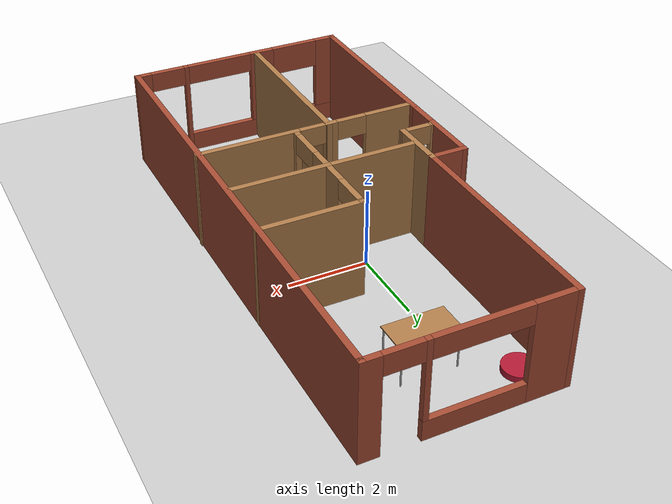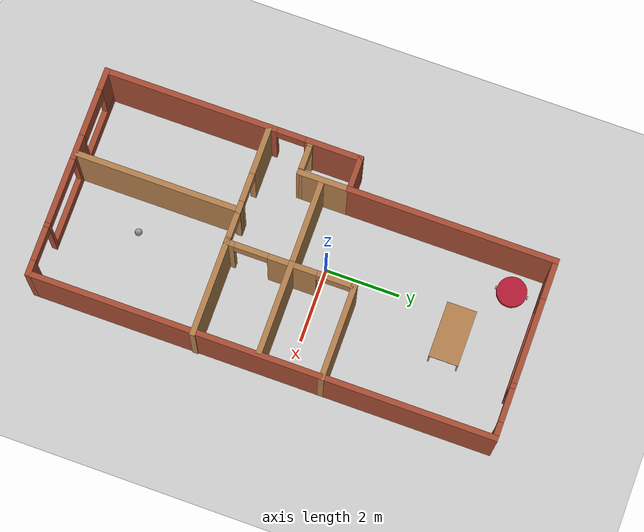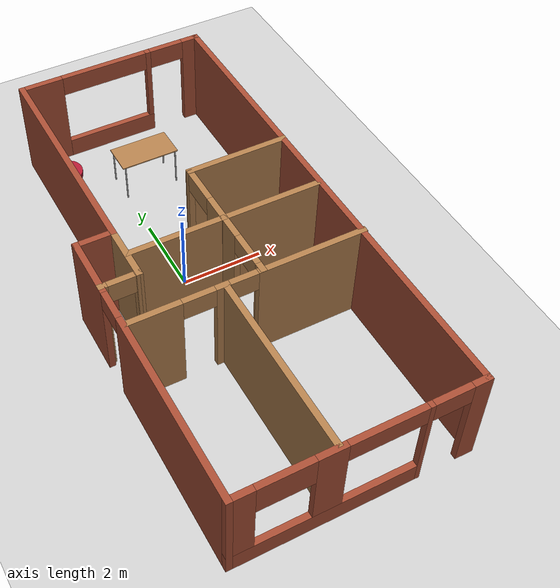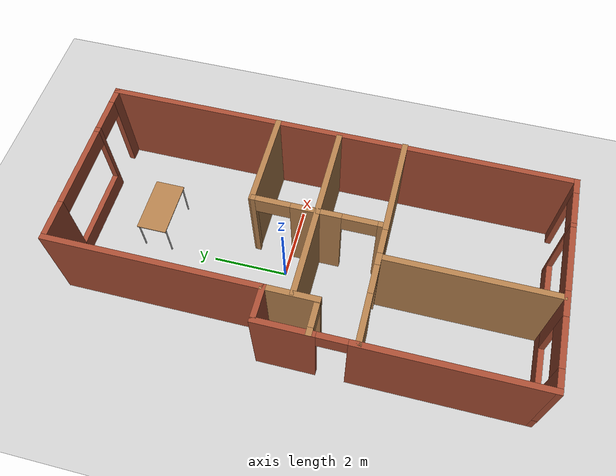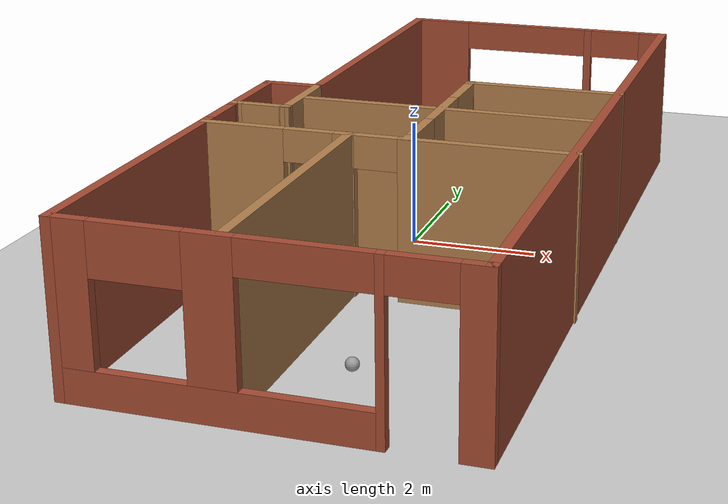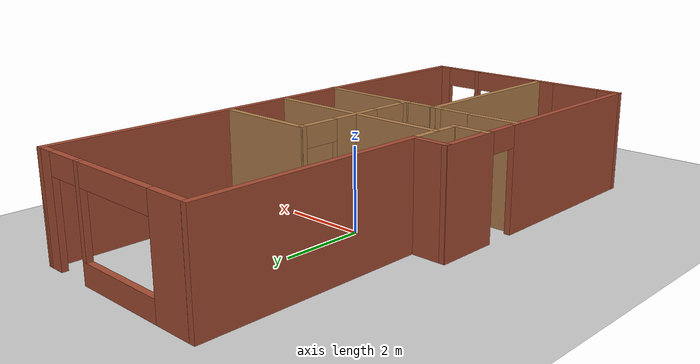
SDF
<sdf version="1.6">
 <world name="default">
  <plugin name="hello" filename="libhome_plugin.so"/>
  <light name="sun" type="directional">
   <pose>0 0 10 0 -0 0</pose>
   <diffuse>0.8 0.8 0.8 1</diffuse>
   <specular>0.2 0.2 0.2 1</specular>
   <attenuation>
    <range>1000</range>
    <constant>0.9</constant>
    <linear>0.01</linear>
    <quadratic>0.001</quadratic>
   </attenuation>
   <direction>-0.5 0.1 -0.9</direction>
  </light>
  <model name="ground_plane">
   <static>1</static>
   <link name="link">
    <collision name="collision">
     <geometry><plane><normal>0 0 1</normal><size>100 100</size></plane></geometry>
     <surface><friction><ode><mu>100</mu><mu2>50</mu2></ode></friction></surface>
    </collision>
    <visual name="visual">
     <cast_shadows>0</cast_shadows>
     <geometry><plane><normal>0 0 1</normal><size>100 100</size></plane></geometry>
     <material>
      <script><uri>file://media/materials/scripts/gazebo.material</uri><name>Gazebo/Grey</name></script>
     </material>
    </visual>
   </link>
  </model>
  <gravity>0 0 -9.8</gravity>
  <magnetic_field>6e-06 2.3e-05 -4.2e-05</magnetic_field>
  <atmosphere type="adiabatic"/>
  <physics name="default_physics" default="0" type="ode">
   <max_step_size>0.001</max_step_size>
   <real_time_factor>1</real_time_factor>
   <real_time_update_rate>1000</real_time_update_rate>
  </physics>
  <scene><ambient>0.4 0.4 0.4 1</ambient><background>0.7 0.7 0.7 1</background><shadows>1</shadows></scene>
  <spherical_coordinates>
   <surface_model>EARTH_WGS84</surface_model>
   <latitude_deg>0</latitude_deg>
   <longitude_deg>0</longitude_deg>
   <elevation>0</elevation>
   <heading_deg>0</heading_deg>
  </spherical_coordinates>
  <model name="apartment">
   <pose>0.314458 -0.67293 0 0 -0 0</pose>
   <link name="Wall_0">
    <pose>0.485298 6.175 0 0 -0 0</pose>
    <visual name="Wall_0_Visual_0">
     <pose>-1.89642 0 1.25 0 -0 0</pose>
     <geometry><box><size>0.957161 0.15 2.5</size></box></geometry>
     <material>
      <script><uri>file://media/materials/scripts/gazebo.material</uri><name>Gazebo/Bricks</name></script>
      <ambient>0.996078 0.47451 0.0196078 1</ambient>
     </material>
     <meta><layer>0</layer></meta>
    </visual>
    <collision name="Wall_0_Collision_0">
     <geometry><box><size>0.957161 0.15 2.5</size></box></geometry>
     <pose>-1.89642 0 1.25 0 -0 0</pose>
    </collision>
    <visual name="Wall_0_Visual_1">
     <pose>2.12746 0 1.25 0 -0 0</pose>
     <geometry><box><size>0.495082 0.15 2.5</size></box></geometry>
     <material>
      <script><uri>file://media/materials/scripts/gazebo.material</uri><name>Gazebo/Bricks</name></script>
      <ambient>0.996078 0.47451 0.0196078 1</ambient>
     </material>
     <meta><layer>0</layer></meta>
    </visual>
    <collision name="Wall_0_Collision_1">
     <geometry><box><size>0.495082 0.15 2.5</size></box></geometry>
     <pose>2.12746 0 1.25 0 -0 0</pose>
    </collision>
    <visual name="Wall_0_Visual_2">
     <pose>-0.21896 0 0.25 0 -0 0</pose>
     <geometry><box><size>2.39776 0.15 0.5</size></box></geometry>
     <material>
      <script><uri>file://media/materials/scripts/gazebo.material</uri><name>Gazebo/Bricks</name></script>
      <ambient>0.996078 0.47451 0.0196078 1</ambient>
     </material>
     <meta><layer>0</layer></meta>
    </visual>
    <collision name="Wall_0_Collision_2">
     <geometry><box><size>2.39776 0.15 0.5</size></box></geometry>
     <pose>-0.21896 0 0.25 0 -0 0</pose>
    </collision>
    <visual name="Wall_0_Visual_3">
     <pose>0.91204 0 1.5 0 -0 0</pose>
     <geometry><box><size>0.135757 0.15 2</size></box></geometry>
     <material>
      <script><uri>file://media/materials/scripts/gazebo.material</uri><name>Gazebo/Bricks</name></script>
      <ambient>0.996078 0.47451 0.0196078 1</ambient>
     </material>
     <meta><layer>0</layer></meta>
    </visual>
    <collision name="Wall_0_Collision_3">
     <geometry><box><size>0.135757 0.15 2</size></box></geometry>
     <pose>0.91204 0 1.5 0 -0 0</pose>
    </collision>
    <visual name="Wall_0_Visual_4">
     <pose>-0.286839 0 2.25 0 -0 0</pose>
     <geometry><box><size>2.262 0.15 0.5</size></box></geometry>
     <material>
      <script><uri>file://media/materials/scripts/gazebo.material</uri><name>Gazebo/Bricks</name></script>
      <ambient>0.996078 0.47451 0.0196078 1</ambient>
     </material>
     <meta><layer>0</layer></meta>
    </visual>
    <collision name="Wall_0_Collision_4">
     <geometry><box><size>2.262 0.15 0.5</size></box></geometry>
     <pose>-0.286839 0 2.25 0 -0 0</pose>
    </collision>
    <visual name="Wall_0_Visual_5">
     <pose>1.42992 0 2.25 0 -0 0</pose>
     <geometry><box><size>0.9 0.15 0.5</size></box></geometry>
     <material>
      <script><uri>file://media/materials/scripts/gazebo.material</uri><name>Gazebo/Bricks</name></script>
      <ambient>0.996078 0.47451 0.0196078 1</ambient>
     </material>
     <meta><layer>0</layer></meta>
    </visual>
    <collision name="Wall_0_Collision_5">
     <geometry><box><size>0.9 0.15 0.5</size></box></geometry>
     <pose>1.42992 0 2.25 0 -0 0</pose>
    </collision>
   </link>
   <link name="Wall_1">
    <collision name="Wall_1_Collision">
     <geometry><box><size>12.5 0.15 2.5</size></box></geometry>
     <pose>0 0 1.25 0 -0 0</pose>
    </collision>
    <visual name="Wall_1_Visual">
     <pose>0 0 1.25 0 -0 0</pose>
     <geometry><box><size>12.5 0.15 2.5</size></box></geometry>
     <material>
      <script><uri>file://media/materials/scripts/gazebo.material</uri><name>Gazebo/Bricks</name></script>
      <ambient>0.996078 0.47451 0.0196078 1</ambient>
     </material>
     <meta><layer>0</layer></meta>
    </visual>
    <pose>2.7853 0 0 0 0 -1.5708</pose>
   </link>
   <link name="Wall_11">
    <pose>-2.3889 -0.646623 0 0 -0 0</pose>
    <visual name="Wall_11_Visual_0">
     <pose>-0.39543 0 1.25 0 -0 0</pose>
     <geometry><box><size>0.20914 0.15 2.5</size></box></geometry>
     <material>
      <script><uri>file://media/materials/scripts/gazebo.material</uri><name>Gazebo/Wood</name></script>
      <ambient>1 1 1 1</ambient>
     </material>
     <meta><layer>0</layer></meta>
    </visual>
    <collision name="Wall_11_Collision_0">
     <geometry><box><size>0.20914 0.15 2.5</size></box></geometry>
     <pose>-0.39543 0 1.25 0 -0 0</pose>
    </collision>
    <visual name="Wall_11_Visual_1">
     <pose>0.416914 0 1.25 0 -0 0</pose>
     <geometry><box><size>0.166172 0.15 2.5</size></box></geometry>
     <material>
      <script><uri>file://media/materials/scripts/gazebo.material</uri><name>Gazebo/Wood</name></script>
      <ambient>1 1 1 1</ambient>
     </material>
     <meta><layer>0</layer></meta>
    </visual>
    <collision name="Wall_11_Collision_1">
     <geometry><box><size>0.166172 0.15 2.5</size></box></geometry>
     <pose>0.416914 0 1.25 0 -0 0</pose>
    </collision>
    <visual name="Wall_11_Visual_2">
     <pose>0.021484 0 2.25 0 -0 0</pose>
     <geometry><box><size>0.624688 0.15 0.5</size></box></geometry>
     <material>
      <script><uri>file://media/materials/scripts/gazebo.material</uri><name>Gazebo/Wood</name></script>
      <ambient>1 1 1 1</ambient>
     </material>
     <meta><layer>0</layer></meta>
    </visual>
    <collision name="Wall_11_Collision_2">
     <geometry><box><size>0.624688 0.15 0.5</size></box></geometry>
     <pose>0.021484 0 2.25 0 -0 0</pose>
    </collision>
   </link>
   <link name="Wall_12">
    <collision name="Wall_12_Collision">
     <geometry><box><size>1.47155 0.15 2.5</size></box></geometry>
     <pose>0 0 1.25 0 -0 0</pose>
    </collision>
    <visual name="Wall_12_Visual">
     <pose>0 0 1.25 0 -0 0</pose>
     <geometry><box><size>1.47155 0.15 2.5</size></box></geometry>
     <material>
      <script><uri>file://media/materials/scripts/gazebo.material</uri><name>Gazebo/Wood</name></script>
      <ambient>1 1 1 1</ambient>
     </material>
     <meta><layer>0</layer></meta>
    </visual>
    <pose>-1.96418 0.014151 0 0 -0 1.57122</pose>
   </link>
   <link name="Wall_14">
    <collision name="Wall_14_Collision">
     <geometry><box><size>2.425 0.15 2.5</size></box></geometry>
     <pose>0 0 1.25 0 -0 0</pose>
    </collision>
    <visual name="Wall_14_Visual">
     <pose>0 0 1.25 0 -0 0</pose>
     <geometry><box><size>2.425 0.15 2.5</size></box></geometry>
     <material>
      <script><uri>file://media/materials/scripts/gazebo.material</uri><name>Gazebo/Wood</name></script>
      <ambient>1 1 1 1</ambient>
     </material>
     <meta><layer>0</layer></meta>
    </visual>
    <pose>-0.796958 -0.049075 0 0 -0 0</pose>
   </link>
   <link name="Wall_17">
    <collision name="Wall_17_Collision">
     <geometry><box><size>2.584 0.15 2.5</size></box></geometry>
     <pose>0 0 1.25 0 -0 0</pose>
    </collision>
    <visual name="Wall_17_Visual">
     <pose>0 0 1.25 0 -0 0</pose>
     <geometry><box><size>2.584 0.15 2.5</size></box></geometry>
     <material>
      <script><uri>file://media/materials/scripts/gazebo.material</uri><name>Gazebo/Wood</name></script>
      <ambient>1 1 1 1</ambient>
     </material>
     <meta><layer>0</layer></meta>
    </visual>
    <pose>1.57254 1.62593 0 0 -0 3.14159</pose>
   </link>
   <link name="Wall_19">
    <pose>0.350205 -0.090732 0 0 -0 1.5708</pose>
    <visual name="Wall_19_Visual_0">
     <pose>-1.61376 0 1.25 0 -0 0</pose>
     <geometry><box><size>0.272483 0.15 2.5</size></box></geometry>
     <material>
      <script><uri>file://media/materials/scripts/gazebo.material</uri><name>Gazebo/Wood</name></script>
      <ambient>1 1 1 1</ambient>
     </material>
     <meta><layer>0</layer></meta>
    </visual>
    <collision name="Wall_19_Collision_0">
     <geometry><box><size>0.272483 0.15 2.5</size></box></geometry>
     <pose>-1.61376 0 1.25 0 -0 0</pose>
    </collision>
    <visual name="Wall_19_Visual_1">
     <pose>0.073731 0 1.25 0 -0 0</pose>
     <geometry><box><size>1.3025 0.15 2.5</size></box></geometry>
     <material>
      <script><uri>file://media/materials/scripts/gazebo.material</uri><name>Gazebo/Wood</name></script>
      <ambient>1 1 1 1</ambient>
     </material>
     <meta><layer>0</layer></meta>
    </visual>
    <collision name="Wall_19_Collision_1">
     <geometry><box><size>1.3025 0.15 2.5</size></box></geometry>
     <pose>0.073731 0 1.25 0 -0 0</pose>
    </collision>
    <visual name="Wall_19_Visual_2">
     <pose>1.68749 0 1.25 0 -0 0</pose>
     <geometry><box><size>0.12502 0.15 2.5</size></box></geometry>
     <material>
      <script><uri>file://media/materials/scripts/gazebo.material</uri><name>Gazebo/Wood</name></script>
      <ambient>1 1 1 1</ambient>
     </material>
     <meta><layer>0</layer></meta>
    </visual>
    <collision name="Wall_19_Collision_2">
     <geometry><box><size>0.12502 0.15 2.5</size></box></geometry>
     <pose>1.68749 0 1.25 0 -0 0</pose>
    </collision>
    <visual name="Wall_19_Visual_3">
     <pose>-1.02752 0 2.25 0 -0 0</pose>
     <geometry><box><size>0.9 0.15 0.5</size></box></geometry>
     <material>
      <script><uri>file://media/materials/scripts/gazebo.material</uri><name>Gazebo/Wood</name></script>
      <ambient>1 1 1 1</ambient>
     </material>
     <meta><layer>0</layer></meta>
    </visual>
    <collision name="Wall_19_Collision_3">
     <geometry><box><size>0.9 0.15 0.5</size></box></geometry>
     <pose>-1.02752 0 2.25 0 -0 0</pose>
    </collision>
    <visual name="Wall_19_Visual_4">
     <pose>1.17498 0 2.25 0 -0 0</pose>
     <geometry><box><size>0.9 0.15 0.5</size></box></geometry>
     <material>
      <script><uri>file://media/materials/scripts/gazebo.material</uri><name>Gazebo/Wood</name></script>
      <ambient>1 1 1 1</ambient>
     </material>
     <meta><layer>0</layer></meta>
    </visual>
    <collision name="Wall_19_Collision_4">
     <geometry><box><size>0.9 0.15 0.5</size></box></geometry>
     <pose>1.17498 0 2.25 0 -0 0</pose>
    </collision>
   </link>
   <link name="Wall_2">
    <pose>-0.014702 -6.175 0 0 -0 3.14159</pose>
    <visual name="Wall_2_Visual_0">
     <pose>-2.65805 0 1.25 0 -0 0</pose>
     <geometry><box><size>0.433901 0.15 2.5</size></box></geometry>
     <material>
      <script><uri>file://media/materials/scripts/gazebo.material</uri><name>Gazebo/Bricks</name></script>
      <ambient>0.996078 0.47451 0.0196078 1</ambient>
     </material>
     <meta><layer>0</layer></meta>
    </visual>
    <collision name="Wall_2_Collision_0">
     <geometry><box><size>0.433901 0.15 2.5</size></box></geometry>
     <pose>-2.65805 0 1.25 0 -0 0</pose>
    </collision>
    <visual name="Wall_2_Visual_1">
     <pose>-1.48313 0 1.25 0 -0 0</pose>
     <geometry><box><size>0.115933 0.15 2.5</size></box></geometry>
     <material>
      <script><uri>file://media/materials/scripts/gazebo.material</uri><name>Gazebo/Bricks</name></script>
      <ambient>0.996078 0.47451 0.0196078 1</ambient>
     </material>
     <meta><layer>0</layer></meta>
    </visual>
    <collision name="Wall_2_Collision_1">
     <geometry><box><size>0.115933 0.15 2.5</size></box></geometry>
     <pose>-1.48313 0 1.25 0 -0 0</pose>
    </collision>
    <visual name="Wall_2_Visual_2">
     <pose>0.724917 0 0.25 0 -0 0</pose>
     <geometry><box><size>4.30017 0.15 0.5</size></box></geometry>
     <material>
      <script><uri>file://media/materials/scripts/gazebo.material</uri><name>Gazebo/Bricks</name></script>
      <ambient>0.996078 0.47451 0.0196078 1</ambient>
     </material>
     <meta><layer>0</layer></meta>
    </visual>
    <collision name="Wall_2_Collision_2">
     <geometry><box><size>4.30017 0.15 0.5</size></box></geometry>
     <pose>0.724917 0 0.25 0 -0 0</pose>
    </collision>
    <visual name="Wall_2_Visual_3">
     <pose>0.668464 0 1.5 0 -0 0</pose>
     <geometry><box><size>0.66726 0.15 2</size></box></geometry>
     <material>
      <script><uri>file://media/materials/scripts/gazebo.material</uri><name>Gazebo/Bricks</name></script>
      <ambient>0.996078 0.47451 0.0196078 1</ambient>
     </material>
     <meta><layer>0</layer></meta>
    </visual>
    <collision name="Wall_2_Collision_3">
     <geometry><box><size>0.66726 0.15 2</size></box></geometry>
     <pose>0.668464 0 1.5 0 -0 0</pose>
    </collision>
    <visual name="Wall_2_Visual_4">
     <pose>2.57155 0 1.5 0 -0 0</pose>
     <geometry><box><size>0.606906 0.15 2</size></box></geometry>
     <material>
      <script><uri>file://media/materials/scripts/gazebo.material</uri><name>Gazebo/Bricks</name></script>
      <ambient>0.996078 0.47451 0.0196078 1</ambient>
     </material>
     <meta><layer>0</layer></meta>
    </visual>
    <collision name="Wall_2_Collision_4">
     <geometry><box><size>0.606906 0.15 2</size></box></geometry>
     <pose>2.57155 0 1.5 0 -0 0</pose>
    </collision>
    <visual name="Wall_2_Visual_5">
     <pose>1.63509 0 2.125 0 -0 0</pose>
     <geometry><box><size>1.266 0.15 0.75</size></box></geometry>
     <material>
      <script><uri>file://media/materials/scripts/gazebo.material</uri><name>Gazebo/Bricks</name></script>
      <ambient>0.996078 0.47451 0.0196078 1</ambient>
     </material>
     <meta><layer>0</layer></meta>
    </visual>
    <collision name="Wall_2_Collision_5">
     <geometry><box><size>1.266 0.15 0.75</size></box></geometry>
     <pose>1.63509 0 2.125 0 -0 0</pose>
    </collision>
    <visual name="Wall_2_Visual_6">
     <pose>-1.9911 0 2.25 0 -0 0</pose>
     <geometry><box><size>0.9 0.15 0.5</size></box></geometry>
     <material>
      <script><uri>file://media/materials/scripts/gazebo.material</uri><name>Gazebo/Bricks</name></script>
      <ambient>0.996078 0.47451 0.0196078 1</ambient>
     </material>
     <meta><layer>0</layer></meta>
    </visual>
    <collision name="Wall_2_Collision_6">
     <geometry><box><size>0.9 0.15 0.5</size></box></geometry>
     <pose>-1.9911 0 2.25 0 -0 0</pose>
    </collision>
    <visual name="Wall_2_Visual_7">
     <pose>-0.545166 0 2.25 0 -0 0</pose>
     <geometry><box><size>1.76 0.15 0.5</size></box></geometry>
     <material>
      <script><uri>file://media/materials/scripts/gazebo.material</uri><name>Gazebo/Bricks</name></script>
      <ambient>0.996078 0.47451 0.0196078 1</ambient>
     </material>
     <meta><layer>0</layer></meta>
    </visual>
    <collision name="Wall_2_Collision_7">
     <geometry><box><size>1.76 0.15 0.5</size></box></geometry>
     <pose>-0.545166 0 2.25 0 -0 0</pose>
    </collision>
   </link>
   <link name="Wall_21">
    <collision name="Wall_21_Collision">
     <geometry><box><size>2.5 0.15 2.5</size></box></geometry>
     <pose>0 0 1.25 0 -0 0</pose>
    </collision>
    <visual name="Wall_21_Visual">
     <pose>0 0 1.25 0 -0 0</pose>
     <geometry><box><size>2.5 0.15 2.5</size></box></geometry>
     <material>
      <script><uri>file://media/materials/scripts/gazebo.material</uri><name>Gazebo/Wood</name></script>
      <ambient>1 1 1 1</ambient>
     </material>
     <meta><layer>0</layer></meta>
    </visual>
    <pose>1.51554 -0.049075 0 0 -0 0</pose>
   </link>
   <link name="Wall_3">
    <pose>-2.8147 -2.75 0 0 -0 1.5708</pose>
    <visual name="Wall_3_Visual_0">
     <pose>-1.15148 0 1.25 0 -0 0</pose>
     <geometry><box><size>4.69705 0.15 2.5</size></box></geometry>
     <material>
      <script><uri>file://media/materials/scripts/gazebo.material</uri><name>Gazebo/Bricks</name></script>
      <ambient>0.996078 0.47451 0.0196078 1</ambient>
     </material>
     <meta><layer>0</layer></meta>
    </visual>
    <collision name="Wall_3_Collision_0">
     <geometry><box><size>4.69705 0.15 2.5</size></box></geometry>
     <pose>-1.15148 0 1.25 0 -0 0</pose>
    </collision>
    <visual name="Wall_3_Visual_1">
     <pose>2.72205 0 1.25 0 -0 0</pose>
     <geometry><box><size>1.55591 0.15 2.5</size></box></geometry>
     <material>
      <script><uri>file://media/materials/scripts/gazebo.material</uri><name>Gazebo/Bricks</name></script>
      <ambient>0.996078 0.47451 0.0196078 1</ambient>
     </material>
     <meta><layer>0</layer></meta>
    </visual>
    <collision name="Wall_3_Collision_1">
     <geometry><box><size>1.55591 0.15 2.5</size></box></geometry>
     <pose>2.72205 0 1.25 0 -0 0</pose>
    </collision>
    <visual name="Wall_3_Visual_2">
     <pose>1.57057 0 2.25 0 -0 0</pose>
     <geometry><box><size>0.747049 0.15 0.5</size></box></geometry>
     <material>
      <script><uri>file://media/materials/scripts/gazebo.material</uri><name>Gazebo/Bricks</name></script>
      <ambient>0.996078 0.47451 0.0196078 1</ambient>
     </material>
     <meta><layer>0</layer></meta>
    </visual>
    <collision name="Wall_3_Collision_2">
     <geometry><box><size>0.747049 0.15 0.5</size></box></geometry>
     <pose>1.57057 0 2.25 0 -0 0</pose>
    </collision>
   </link>
   <link name="Wall_4">
    <collision name="Wall_4_Collision">
     <geometry><box><size>1 0.15 2.5</size></box></geometry>
     <pose>0 0 1.25 0 -0 0</pose>
    </collision>
    <visual name="Wall_4_Visual">
     <pose>0 0 1.25 0 -0 0</pose>
     <geometry><box><size>1 0.15 2.5</size></box></geometry>
     <material>
      <script><uri>file://media/materials/scripts/gazebo.material</uri><name>Gazebo/Bricks</name></script>
      <ambient>0.996078 0.47451 0.0196078 1</ambient>
     </material>
     <meta><layer>0</layer></meta>
    </visual>
    <pose>-2.38958 0.674962 0 0 0 -8.9e-05</pose>
   </link>
   <link name="Wall_5">
    <collision name="Wall_5_Collision">
     <geometry><box><size>5.648 0.15 2.5</size></box></geometry>
     <pose>0 0 1.25 0 -0 0</pose>
    </collision>
    <visual name="Wall_5_Visual">
     <pose>0 0 1.25 0 -0 0</pose>
     <geometry><box><size>5.648 0.15 2.5</size></box></geometry>
     <material>
      <script><uri>file://media/materials/scripts/gazebo.material</uri><name>Gazebo/Bricks</name></script>
      <ambient>0.996078 0.47451 0.0196078 1</ambient>
     </material>
     <meta><layer>0</layer></meta>
    </visual>
    <pose>-1.96446 3.42392 0 0 -0 1.5708</pose>
   </link>
   <link name="Wall_7">
    <pose>0.014703 -1.77234 0 0 -0 3.14159</pose>
    <visual name="Wall_7_Visual_0">
     <pose>-1.5455 0 1.25 0 -0 0</pose>
     <geometry><box><size>2.65901 0.15 2.5</size></box></geometry>
     <material>
      <script><uri>file://media/materials/scripts/gazebo.material</uri><name>Gazebo/Wood</name></script>
      <ambient>1 1 1 1</ambient>
     </material>
     <meta><layer>0</layer></meta>
    </visual>
    <collision name="Wall_7_Collision_0">
     <geometry><box><size>2.65901 0.15 2.5</size></box></geometry>
     <pose>-1.5455 0 1.25 0 -0 0</pose>
    </collision>
    <visual name="Wall_7_Visual_1">
     <pose>0.60939 0 1.25 0 -0 0</pose>
     <geometry><box><size>0.328058 0.15 2.5</size></box></geometry>
     <material>
      <script><uri>file://media/materials/scripts/gazebo.material</uri><name>Gazebo/Wood</name></script>
      <ambient>1 1 1 1</ambient>
     </material>
     <meta><layer>0</layer></meta>
    </visual>
    <collision name="Wall_7_Collision_1">
     <geometry><box><size>0.328058 0.15 2.5</size></box></geometry>
     <pose>0.60939 0 1.25 0 -0 0</pose>
    </collision>
    <visual name="Wall_7_Visual_2">
     <pose>2.20709 0 1.25 0 -0 0</pose>
     <geometry><box><size>1.33582 0.15 2.5</size></box></geometry>
     <material>
      <script><uri>file://media/materials/scripts/gazebo.material</uri><name>Gazebo/Wood</name></script>
      <ambient>1 1 1 1</ambient>
     </material>
     <meta><layer>0</layer></meta>
    </visual>
    <collision name="Wall_7_Collision_2">
     <geometry><box><size>1.33582 0.15 2.5</size></box></geometry>
     <pose>2.20709 0 1.25 0 -0 0</pose>
    </collision>
    <visual name="Wall_7_Visual_3">
     <pose>0.114683 0 2.25 0 -0 0</pose>
     <geometry><box><size>0.661355 0.15 0.5</size></box></geometry>
     <material>
      <script><uri>file://media/materials/scripts/gazebo.material</uri><name>Gazebo/Wood</name></script>
      <ambient>1 1 1 1</ambient>
     </material>
     <meta><layer>0</layer></meta>
    </visual>
    <collision name="Wall_7_Collision_3">
     <geometry><box><size>0.661355 0.15 0.5</size></box></geometry>
     <pose>0.114683 0 2.25 0 -0 0</pose>
    </collision>
    <visual name="Wall_7_Visual_4">
     <pose>1.1563 0 2.25 0 -0 0</pose>
     <geometry><box><size>0.765762 0.15 0.5</size></box></geometry>
     <material>
      <script><uri>file://media/materials/scripts/gazebo.material</uri><name>Gazebo/Wood</name></script>
      <ambient>1 1 1 1</ambient>
     </material>
     <meta><layer>0</layer></meta>
    </visual>
    <collision name="Wall_7_Collision_4">
     <geometry><box><size>0.765762 0.15 0.5</size></box></geometry>
     <pose>1.1563 0 2.25 0 -0 0</pose>
    </collision>
   </link>
   <link name="Wall_9">
    <collision name="Wall_9_Collision">
     <geometry><box><size>4.481 0.15 2.5</size></box></geometry>
     <pose>0 0 1.25 0 -0 0</pose>
    </collision>
    <visual name="Wall_9_Visual">
     <pose>0 0 1.25 0 -0 0</pose>
     <geometry><box><size>4.481 0.15 2.5</size></box></geometry>
     <material>
      <script><uri>file://media/materials/scripts/gazebo.material</uri><name>Gazebo/Wood</name></script>
      <ambient>1 1 1 1</ambient>
     </material>
     <meta><layer>0</layer></meta>
    </visual>
    <pose>-0.527458 -3.93358 0 0 -0 1.5708</pose>
   </link>
   <static>1</static>
  </model>
  <model name="Roboter_1">
   <link name="link_0">
    <pose>4e-06 8.4e-05 0.04 0 -0 0</pose>
    <inertial>
     <mass>1</mass>
     <inertia><ixx>0.145833</ixx><ixy>0</ixy><ixz>0</ixz><iyy>0.145833</iyy><iyz>0</iyz><izz>0.125</izz></inertia>
    </inertial>
    <visual name="visual">
     <geometry><cylinder><radius>0.4</radius><length>0.15</length></cylinder></geometry>
     <material>
      <lighting>1</lighting>
      <script><uri>file://media/materials/scripts/gazebo.material</uri><name>Gazebo/Grey</name></script>
      <shader type="pixel"><normal_map>__default__</normal_map></shader>
      <ambient>0.7 0.1 0.2 1</ambient>
      <diffuse>0.7 0.7 0.7 1</diffuse>
      <specular>0.01 0.01 0.01 1</specular>
      <emissive>0 0 0 1</emissive>
     </material>
    </visual>
    <collision name="collision">
     <geometry><cylinder><radius>0.4</radius><length>0.15</length></cylinder></geometry>
     <surface>
      <friction>
       <ode><mu>1</mu><mu2>1</mu2><fdir1>0 0 0</fdir1><slip1>0</slip1><slip2>0</slip2></ode>
       <torsional>
        <coefficient>1</coefficient>
        <patch_radius>0</patch_radius>
        <surface_radius>0</surface_radius>
        <use_patch_radius>1</use_patch_radius>
        <ode><slip>0</slip></ode>
       </torsional>
      </friction>
      <bounce><restitution_coefficient>0</restitution_coefficient><threshold>1e+06</threshold></bounce>
      <contact>
       <collide_without_contact>0</collide_without_contact>
       <collide_without_contact_bitmask>1</collide_without_contact_bitmask>
       <collide_bitmask>1</collide_bitmask>
       <ode>
        <soft_cfm>0</soft_cfm>
        <soft_erp>0.2</soft_erp>
        <kp>1e+13</kp>
        <kd>1</kd>
        <max_vel>0.01</max_vel>
        <min_depth>0</min_depth>
       </ode>
       <bullet>
        <split_impulse>1</split_impulse>
        <split_impulse_penetration_threshold>-0.01</split_impulse_penetration_threshold>
        <soft_cfm>0</soft_cfm>
        <soft_erp>0.2</soft_erp>
        <kp>1e+13</kp>
        <kd>1</kd>
       </bullet>
      </contact>
     </surface>
    </collision>
   </link>
   <link name="link_1_clone">
    <pose>0 0.420094 -0.01 1.5707 -0 0</pose>
    <inertial>
     <mass>1</mass>
     <inertia><ixx>0.145833</ixx><ixy>0</ixy><ixz>0</ixz><iyy>0.145833</iyy><iyz>0</iyz><izz>0.125</izz></inertia>
    </inertial>
    <visual name="visual">
     <geometry><cylinder><radius>0.05</radius><length>0.04</length></cylinder></geometry>
     <material>
      <lighting>1</lighting>
      <script><uri>file://media/materials/scripts/gazebo.material</uri><name>Gazebo/Grey</name></script>
      <shader type="pixel"><normal_map>__default__</normal_map></shader>
      <ambient>0.3 0.3 0.3 1</ambient>
      <diffuse>0.7 0.7 0.7 1</diffuse>
      <specular>0.01 0.01 0.01 1</specular>
      <emissive>0 0 0 1</emissive>
     </material>
    </visual>
    <collision name="collision">
     <geometry><cylinder><radius>0.05</radius><length>0.04</length></cylinder></geometry>
     <surface>
      <friction>
       <ode><mu>1</mu><mu2>1</mu2><fdir1>0 0 0</fdir1><slip1>0</slip1><slip2>0</slip2></ode>
       <torsional>
        <coefficient>1</coefficient>
        <patch_radius>0</patch_radius>
        <surface_radius>0</surface_radius>
        <use_patch_radius>1</use_patch_radius>
        <ode><slip>0</slip></ode>
       </torsional>
      </friction>
      <bounce><restitution_coefficient>0</restitution_coefficient><threshold>1e+06</threshold></bounce>
      <contact>
       <collide_without_contact>0</collide_without_contact>
       <collide_without_contact_bitmask>1</collide_without_contact_bitmask>
       <collide_bitmask>1</collide_bitmask>
       <ode>
        <soft_cfm>0</soft_cfm>
        <soft_erp>0.2</soft_erp>
        <kp>1e+13</kp>
        <kd>1</kd>
        <max_vel>0.01</max_vel>
        <min_depth>0</min_depth>
       </ode>
       <bullet>
        <split_impulse>1</split_impulse>
        <split_impulse_penetration_threshold>-0.01</split_impulse_penetration_threshold>
        <soft_cfm>0</soft_cfm>
        <soft_erp>0.2</soft_erp>
        <kp>1e+13</kp>
        <kd>1</kd>
       </bullet>
      </contact>
     </surface>
    </collision>
   </link>
   <link name="link_1_clone_clone">
    <pose>0 -0.419916 -0.01 1.5707 -0 0</pose>
    <inertial>
     <mass>1</mass>
     <inertia><ixx>0.145833</ixx><ixy>0</ixy><ixz>0</ixz><iyy>0.145833</iyy><iyz>0</iyz><izz>0.125</izz></inertia>
    </inertial>
    <visual name="visual">
     <geometry><cylinder><radius>0.05</radius><length>0.04</length></cylinder></geometry>
     <material>
      <lighting>1</lighting>
      <script><uri>file://media/materials/scripts/gazebo.material</uri><name>Gazebo/Grey</name></script>
      <shader type="pixel"><normal_map>__default__</normal_map></shader>
      <ambient>0.3 0.3 0.3 1</ambient>
      <diffuse>0.7 0.7 0.7 1</diffuse>
      <specular>0.01 0.01 0.01 1</specular>
      <emissive>0 0 0 1</emissive>
     </material>
    </visual>
    <collision name="collision">
     <geometry><cylinder><radius>0.05</radius><length>0.04</length></cylinder></geometry>
     <surface>
      <friction>
       <ode><mu>1</mu><mu2>1</mu2><fdir1>0 0 0</fdir1><slip1>0</slip1><slip2>0</slip2></ode>
       <torsional>
        <coefficient>1</coefficient>
        <patch_radius>0</patch_radius>
        <surface_radius>0</surface_radius>
        <use_patch_radius>1</use_patch_radius>
        <ode><slip>0</slip></ode>
       </torsional>
      </friction>
      <bounce><restitution_coefficient>0</restitution_coefficient><threshold>1e+06</threshold></bounce>
      <contact>
       <collide_without_contact>0</collide_without_contact>
       <collide_without_contact_bitmask>1</collide_without_contact_bitmask>
       <collide_bitmask>1</collide_bitmask>
       <ode>
        <soft_cfm>0</soft_cfm>
        <soft_erp>0.2</soft_erp>
        <kp>1e+13</kp>
        <kd>1</kd>
        <max_vel>0.01</max_vel>
        <min_depth>0</min_depth>
       </ode>
       <bullet>
        <split_impulse>1</split_impulse>
        <split_impulse_penetration_threshold>-0.01</split_impulse_penetration_threshold>
        <soft_cfm>0</soft_cfm>
        <soft_erp>0.2</soft_erp>
        <kp>1e+13</kp>
        <kd>1</kd>
       </bullet>
      </contact>
     </surface>
    </collision>
   </link>
   <link name="link_2">
    <pose>-0.349996 -0.000346 -0.01 0 -0 0</pose>
    <inertial>
     <mass>1</mass>
     <inertia><ixx>0.1</ixx><ixy>0</ixy><ixz>0</ixz><iyy>0.1</iyy><iyz>0</iyz><izz>0.1</izz></inertia>
    </inertial>
    <visual name="visual">
     <geometry><sphere><radius>0.05</radius></sphere></geometry>
     <material>
      <lighting>1</lighting>
      <script><uri>file://media/materials/scripts/gazebo.material</uri><name>Gazebo/Grey</name></script>
      <shader type="pixel"><normal_map>__default__</normal_map></shader>
      <ambient>0.3 0.3 0.3 1</ambient>
      <diffuse>0.7 0.7 0.7 1</diffuse>
      <specular>0.01 0.01 0.01 1</specular>
      <emissive>0 0 0 1</emissive>
     </material>
    </visual>
    <collision name="collision">
     <geometry><sphere><radius>0.05</radius></sphere></geometry>
     <surface>
      <friction>
       <ode><mu>1</mu><mu2>1</mu2><fdir1>0 0 0</fdir1><slip1>0</slip1><slip2>0</slip2></ode>
       <torsional>
        <coefficient>1</coefficient>
        <patch_radius>0</patch_radius>
        <surface_radius>0</surface_radius>
        <use_patch_radius>1</use_patch_radius>
        <ode><slip>0</slip></ode>
       </torsional>
      </friction>
      <bounce><restitution_coefficient>0</restitution_coefficient><threshold>1e+06</threshold></bounce>
      <contact>
       <collide_without_contact>0</collide_without_contact>
       <collide_without_contact_bitmask>1</collide_without_contact_bitmask>
       <collide_bitmask>1</collide_bitmask>
       <ode>
        <soft_cfm>0</soft_cfm>
        <soft_erp>0.2</soft_erp>
        <kp>1e+13</kp>
        <kd>1</kd>
        <max_vel>0.01</max_vel>
        <min_depth>0</min_depth>
       </ode>
       <bullet>
        <split_impulse>1</split_impulse>
        <split_impulse_penetration_threshold>-0.01</split_impulse_penetration_threshold>
        <soft_cfm>0</soft_cfm>
        <soft_erp>0.2</soft_erp>
        <kp>1e+13</kp>
        <kd>1</kd>
       </bullet>
      </contact>
     </surface>
    </collision>
   </link>
   <link name="link_2_clone">
    <pose>0.350004 8.4e-05 -0.01 0 -0 0</pose>
    <inertial>
     <mass>1</mass>
     <inertia><ixx>0.1</ixx><ixy>0</ixy><ixz>0</ixz><iyy>0.1</iyy><iyz>0</iyz><izz>0.1</izz></inertia>
    </inertial>
    <visual name="visual">
     <geometry><sphere><radius>0.05</radius></sphere></geometry>
     <material>
      <lighting>1</lighting>
      <script><uri>file://media/materials/scripts/gazebo.material</uri><name>Gazebo/Grey</name></script>
      <shader type="pixel"><normal_map>__default__</normal_map></shader>
      <ambient>0.3 0.3 0.3 1</ambient>
      <diffuse>0.7 0.7 0.7 1</diffuse>
      <specular>0.01 0.01 0.01 1</specular>
      <emissive>0 0 0 1</emissive>
     </material>
    </visual>
    <collision name="collision">
     <geometry><sphere><radius>0.05</radius></sphere></geometry>
     <surface>
      <friction>
       <ode><mu>1</mu><mu2>1</mu2><fdir1>0 0 0</fdir1><slip1>0</slip1><slip2>0</slip2></ode>
       <torsional>
        <coefficient>1</coefficient>
        <patch_radius>0</patch_radius>
        <surface_radius>0</surface_radius>
        <use_patch_radius>1</use_patch_radius>
        <ode><slip>0</slip></ode>
       </torsional>
      </friction>
      <bounce><restitution_coefficient>0</restitution_coefficient><threshold>1e+06</threshold></bounce>
      <contact>
       <collide_without_contact>0</collide_without_contact>
       <collide_without_contact_bitmask>1</collide_without_contact_bitmask>
       <collide_bitmask>1</collide_bitmask>
       <ode>
        <soft_cfm>0</soft_cfm>
        <soft_erp>0.2</soft_erp>
        <kp>1e+13</kp>
        <kd>1</kd>
        <max_vel>0.01</max_vel>
        <min_depth>0</min_depth>
       </ode>
       <bullet>
        <split_impulse>1</split_impulse>
        <split_impulse_penetration_threshold>-0.01</split_impulse_penetration_threshold>
        <soft_cfm>0</soft_cfm>
        <soft_erp>0.2</soft_erp>
        <kp>1e+13</kp>
        <kd>1</kd>
       </bullet>
      </contact>
     </surface>
    </collision>
   </link>
   <joint name="link_0_JOINT_11" type="ball">
    <parent>link_0</parent>
    <child>link_2</child>
    <physics>
     <ode><limit><cfm>0</cfm><erp>0.2</erp></limit><suspension><cfm>0</cfm><erp>0.2</erp></suspension></ode>
    </physics>
   </joint>
   <joint name="link_0_JOINT_12" type="ball">
    <parent>link_0</parent>
    <child>link_2_clone</child>
    <physics>
     <ode><limit><cfm>0</cfm><erp>0.2</erp></limit><suspension><cfm>0</cfm><erp>0.2</erp></suspension></ode>
    </physics>
   </joint>
   <joint name="link_0_JOINT_7" type="revolute">
    <parent>link_0</parent>
    <child>link_1_clone</child>
    <axis>
     <xyz>0 0 1</xyz>
     <use_parent_model_frame>0</use_parent_model_frame>
     <limit>
      <lower>-1.79769e+308</lower>
      <upper>1.79769e+308</upper>
      <effort>-1</effort>
      <velocity>-1</velocity>
     </limit>
     <dynamics>
      <spring_reference>0</spring_reference>
      <spring_stiffness>0</spring_stiffness>
      <damping>0</damping>
      <friction>0</friction>
     </dynamics>
    </axis>
    <physics>
     <ode><limit><cfm>0</cfm><erp>0.2</erp></limit><suspension><cfm>0</cfm><erp>0.2</erp></suspension></ode>
    </physics>
   </joint>
   <joint name="link_0_JOINT_8" type="revolute">
    <parent>link_0</parent>
    <child>link_1_clone_clone</child>
    <axis>
     <xyz>0 0 1</xyz>
     <use_parent_model_frame>0</use_parent_model_frame>
     <limit>
      <lower>-1.79769e+308</lower>
      <upper>1.79769e+308</upper>
      <effort>-1</effort>
      <velocity>-1</velocity>
     </limit>
     <dynamics>
      <spring_reference>0</spring_reference>
      <spring_stiffness>0</spring_stiffness>
      <damping>0</damping>
      <friction>0</friction>
     </dynamics>
    </axis>
    <physics>
     <ode><limit><cfm>0</cfm><erp>0.2</erp></limit><suspension><cfm>0</cfm><erp>0.2</erp></suspension></ode>
    </physics>
   </joint>
   <static>0</static>
   <pose>-1.05039 4.73384 0.060001 2e-06 -2e-06 -0.000461</pose>
  </model>
  <model name="table">
   <static>1</static>
   <link name="link">
    <collision name="surface">
     <pose>0 0 1 0 -0 0</pose>
     <geometry><box><size>1.5 0.8 0.03</size></box></geometry>
     <surface><friction><ode><mu>0.6</mu><mu2>0.6</mu2></ode></friction></surface>
    </collision>
    <visual name="visual1">
     <pose>0 0 1 0 -0 0</pose>
     <geometry><box><size>1.5 0.8 0.03</size></box></geometry>
     <material>
      <script><uri>file://media/materials/scripts/gazebo.material</uri><name>Gazebo/Wood</name></script>
     </material>
    </visual>
    <collision name="front_left_leg">
     <pose>0.68 0.38 0.5 0 -0 0</pose>
     <geometry><cylinder><radius>0.02</radius><length>1</length></cylinder></geometry>
    </collision>
    <visual name="front_left_leg">
     <pose>0.68 0.38 0.5 0 -0 0</pose>
     <geometry><cylinder><radius>0.02</radius><length>1</length></cylinder></geometry>
     <material>
      <script><uri>file://media/materials/scripts/gazebo.material</uri><name>Gazebo/Grey</name></script>
     </material>
    </visual>
    <collision name="front_right_leg">
     <pose>0.68 -0.38 0.5 0 -0 0</pose>
     <geometry><cylinder><radius>0.02</radius><length>1</length></cylinder></geometry>
    </collision>
    <visual name="front_right_leg">
     <pose>0.68 -0.38 0.5 0 -0 0</pose>
     <geometry><cylinder><radius>0.02</radius><length>1</length></cylinder></geometry>
     <material>
      <script><uri>file://media/materials/scripts/gazebo.material</uri><name>Gazebo/Grey</name></script>
     </material>
    </visual>
    <collision name="back_right_leg">
     <pose>-0.68 -0.38 0.5 0 -0 0</pose>
     <geometry><cylinder><radius>0.02</radius><length>1</length></cylinder></geometry>
    </collision>
    <visual name="back_right_leg">
     <pose>-0.68 -0.38 0.5 0 -0 0</pose>
     <geometry><cylinder><radius>0.02</radius><length>1</length></cylinder></geometry>
     <material>
      <script><uri>file://media/materials/scripts/gazebo.material</uri><name>Gazebo/Grey</name></script>
     </material>
    </visual>
    <collision name="back_left_leg">
     <pose>-0.68 0.38 0.5 0 -0 0</pose>
     <geometry><cylinder><radius>0.02</radius><length>1</length></cylinder></geometry>
    </collision>
    <visual name="back_left_leg">
     <pose>-0.68 0.38 0.5 0 -0 0</pose>
     <geometry><cylinder><radius>0.02</radius><length>1</length></cylinder></geometry>
     <material>
      <script><uri>file://media/materials/scripts/gazebo.material</uri><name>Gazebo/Grey</name></script>
     </material>
    </visual>
   </link>
   <pose>0.685804 3.6553 0 0 -0 0</pose>
  </model>
  <model name="my_ball">
   <link name="link_0">
    <inertial>
     <mass>1</mass>
     <inertia><ixx>0.1</ixx><ixy>0</ixy><ixz>0</ixz><iyy>0.1</iyy><iyz>0</iyz><izz>0.1</izz></inertia>
    </inertial>
    <visual name="visual">
     <geometry><sphere><radius>0.1</radius></sphere></geometry>
     <material>
      <lighting>1</lighting>
      <script><uri>file://media/materials/scripts/gazebo.material</uri><name>Gazebo/Grey</name></script>
      <shader type="pixel"><normal_map>__default__</normal_map></shader>
      <ambient>1 1 1 1</ambient>
      <diffuse>1 1 1 1</diffuse>
      <specular>1 1 1 1</specular>
      <emissive>1 1 1 1</emissive>
     </material>
    </visual>
    <collision name="collision">
     <geometry><sphere><radius>0.1</radius></sphere></geometry>
     <surface>
      <friction>
       <ode><mu>1</mu><mu2>1</mu2><fdir1>0 0 0</fdir1><slip1>0</slip1><slip2>0</slip2></ode>
       <torsional>
        <coefficient>1</coefficient>
        <patch_radius>0</patch_radius>
        <surface_radius>0</surface_radius>
        <use_patch_radius>1</use_patch_radius>
        <ode><slip>0</slip></ode>
       </torsional>
      </friction>
      <bounce><restitution_coefficient>0</restitution_coefficient><threshold>1e+06</threshold></bounce>
      <contact>
       <collide_without_contact>0</collide_without_contact>
       <collide_without_contact_bitmask>1</collide_without_contact_bitmask>
       <collide_bitmask>1</collide_bitmask>
       <ode>
        <soft_cfm>0</soft_cfm>
        <soft_erp>0.2</soft_erp>
        <kp>1e+13</kp>
        <kd>1</kd>
        <max_vel>0.01</max_vel>
        <min_depth>0</min_depth>
       </ode>
       <bullet>
        <split_impulse>1</split_impulse>
        <split_impulse_penetration_threshold>-0.01</split_impulse_penetration_threshold>
        <soft_cfm>0</soft_cfm>
        <soft_erp>0.2</soft_erp>
        <kp>1e+13</kp>
        <kd>1</kd>
       </bullet>
      </contact>
     </surface>
    </collision>
   </link>
   <static>0</static>
   <pose>0.71009 -4.93703 0.1 0 -0 0</pose>
  </model>
 </world>
</sdf>
